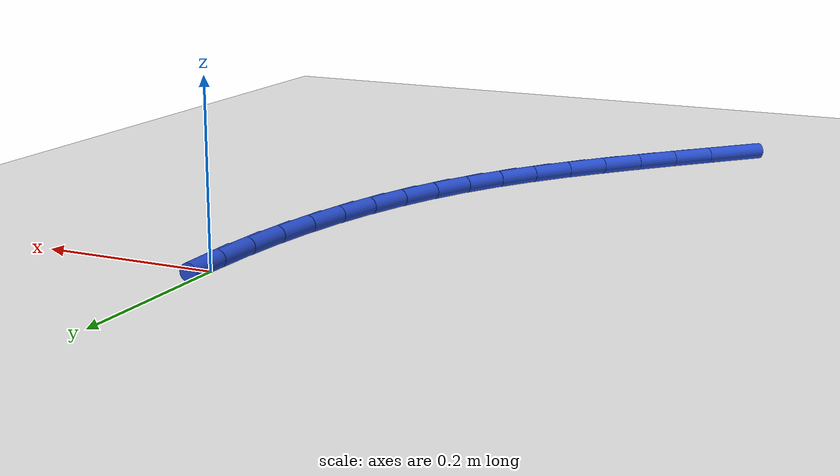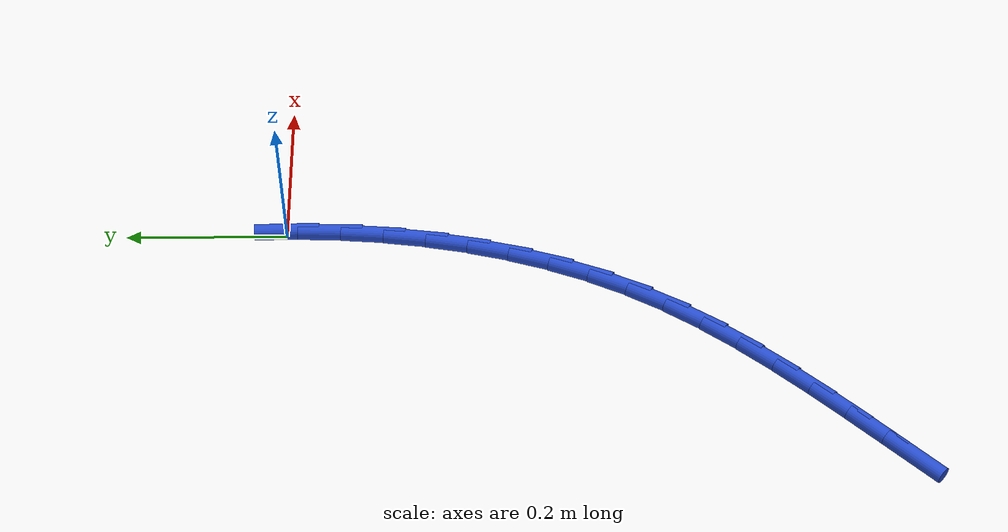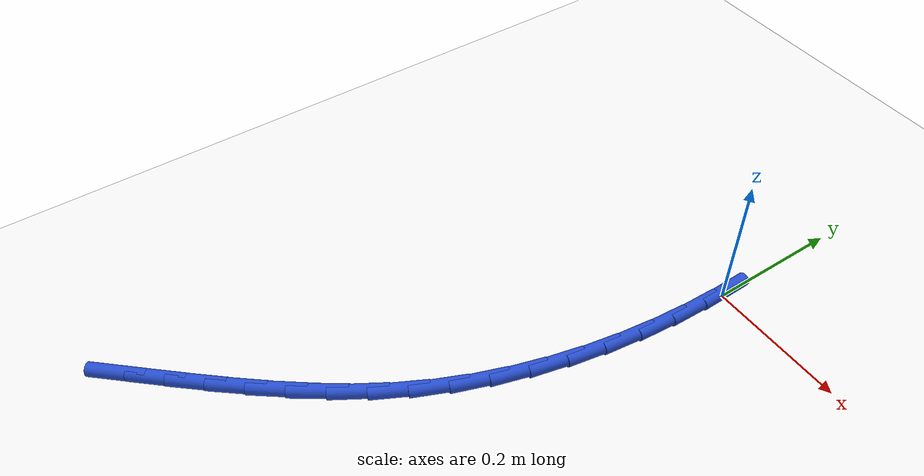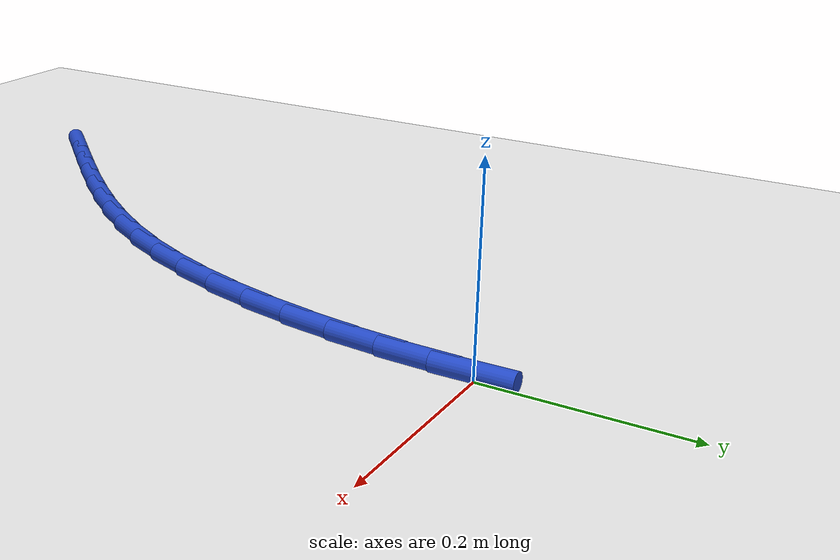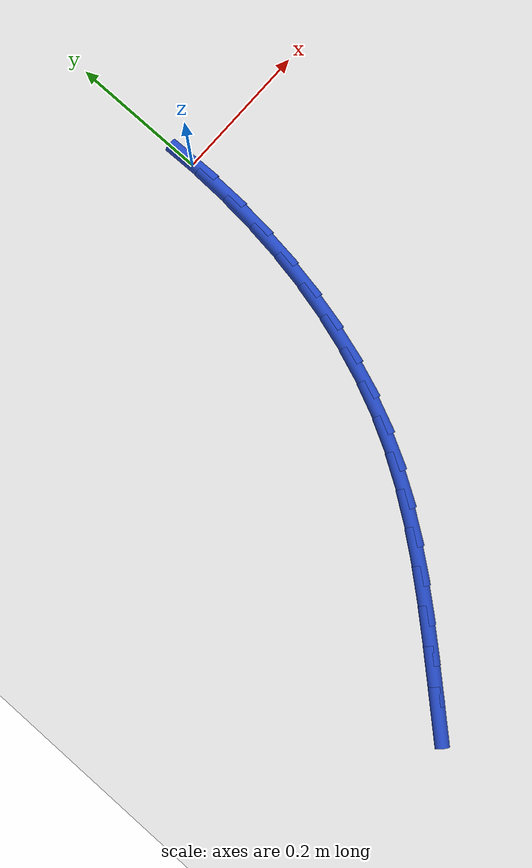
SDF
<sdf version="1.6">
 <world name="default">
  <model name="ground_plane">
   <static>1</static>
   <link name="link">
    <collision name="collision">
     <geometry><plane><normal>0 0 1</normal><size>100 100</size></plane></geometry>
     <surface><friction><ode><mu>100</mu><mu2>50</mu2></ode></friction></surface>
    </collision>
    <visual name="visual">
     <cast_shadows>0</cast_shadows>
     <geometry><plane><normal>0 0 1</normal><size>100 100</size></plane></geometry>
     <material>
      <script><uri>file://media/materials/scripts/gazebo.material</uri><name>Gazebo/WhiteGlow</name></script>
     </material>
    </visual>
   </link>
  </model>
  <model name="line">
   <link name="link_124">
    <pose>-0.3400113496667749 -0.7414110810175384 0.01 0 1.57 0.8307174092500438</pose>
    <collision name="collision">
     <geometry><cylinder><radius>0.01</radius><length>0.08</length></cylinder></geometry>
    </collision>
    <visual name="visual">
     <material>
      <script><name>Gazebo/Blue</name><uri>file://media/materials/scripts/gazebo.material</uri></script>
     </material>
     <geometry><cylinder><radius>0.01</radius><length>0.08</length></cylinder></geometry>
    </visual>
   </link>
   <link name="link_125">
    <pose>-0.3039306709004583 -0.7019024024116403 0.01 0 1.57 0.8351237623532022</pose>
    <collision name="collision">
     <geometry><cylinder><radius>0.01</radius><length>0.08</length></cylinder></geometry>
    </collision>
    <visual name="visual">
     <material>
      <script><name>Gazebo/Blue</name><uri>file://media/materials/scripts/gazebo.material</uri></script>
     </material>
     <geometry><cylinder><radius>0.01</radius><length>0.08</length></cylinder></geometry>
    </visual>
   </link>
   <link name="link_126">
    <pose>-0.26827221856015426 -0.6625088659685424 0.01 0 1.57 0.8497046216174723</pose>
    <collision name="collision">
     <geometry><cylinder><radius>0.01</radius><length>0.08</length></cylinder></geometry>
    </collision>
    <visual name="visual">
     <material>
      <script><name>Gazebo/Blue</name><uri>file://media/materials/scripts/gazebo.material</uri></script>
     </material>
     <geometry><cylinder><radius>0.01</radius><length>0.08</length></cylinder></geometry>
    </visual>
   </link>
   <link name="link_127">
    <pose>-0.23346542407739612 -0.622910748767945 0.01 0 1.57 0.8747304905999064</pose>
    <collision name="collision">
     <geometry><cylinder><radius>0.01</radius><length>0.08</length></cylinder></geometry>
    </collision>
    <visual name="visual">
     <material>
      <script><name>Gazebo/Blue</name><uri>file://media/materials/scripts/gazebo.material</uri></script>
     </material>
     <geometry><cylinder><radius>0.01</radius><length>0.08</length></cylinder></geometry>
    </visual>
   </link>
   <link name="link_128">
    <pose>-0.19993971888371573 -0.582788327889546 0.01 0 1.57 0.9104776572240305</pose>
    <collision name="collision">
     <geometry><cylinder><radius>0.01</radius><length>0.08</length></cylinder></geometry>
    </collision>
    <visual name="visual">
     <material>
      <script><name>Gazebo/Blue</name><uri>file://media/materials/scripts/gazebo.material</uri></script>
     </material>
     <geometry><cylinder><radius>0.01</radius><length>0.08</length></cylinder></geometry>
    </visual>
   </link>
   <link name="link_129">
    <pose>-0.16812453441064526 -0.5418218804130445 0.01 0 1.57 0.9571437244117205</pose>
    <collision name="collision">
     <geometry><cylinder><radius>0.01</radius><length>0.08</length></cylinder></geometry>
    </collision>
    <visual name="visual">
     <material>
      <script><name>Gazebo/Blue</name><uri>file://media/materials/scripts/gazebo.material</uri></script>
     </material>
     <geometry><cylinder><radius>0.01</radius><length>0.08</length></cylinder></geometry>
    </visual>
   </link>
   <link name="link_130">
    <pose>-0.13844930208971692 -0.4996916834181391 0.01 0 1.57 1.0147185997044106</pose>
    <collision name="collision">
     <geometry><cylinder><radius>0.01</radius><length>0.08</length></cylinder></geometry>
    </collision>
    <visual name="visual">
     <material>
      <script><name>Gazebo/Blue</name><uri>file://media/materials/scripts/gazebo.material</uri></script>
     </material>
     <geometry><cylinder><radius>0.01</radius><length>0.08</length></cylinder></geometry>
    </visual>
   </link>
   <link name="link_131">
    <pose>-0.1113434533524627 -0.45607801398452824 0.01 0 1.57 1.082515377827218</pose>
    <collision name="collision">
     <geometry><cylinder><radius>0.01</radius><length>0.08</length></cylinder></geometry>
    </collision>
    <visual name="visual">
     <material>
      <script><name>Gazebo/Blue</name><uri>file://media/materials/scripts/gazebo.material</uri></script>
     </material>
     <geometry><cylinder><radius>0.01</radius><length>0.08</length></cylinder></geometry>
    </visual>
   </link>
   <link name="link_132">
    <pose>-0.087225084570951 -0.41067292324429994 0.01 0 1.57 1.1530958039946302</pose>
    <collision name="collision">
     <geometry><cylinder><radius>0.01</radius><length>0.08</length></cylinder></geometry>
    </collision>
    <visual name="visual">
     <material>
      <script><name>Gazebo/Blue</name><uri>file://media/materials/scripts/gazebo.material</uri></script>
     </material>
     <geometry><cylinder><radius>0.01</radius><length>0.08</length></cylinder></geometry>
    </visual>
   </link>
   <link name="link_133">
    <pose>-0.06625869294279833 -0.36343188308836716 0.01 0 1.57 1.2196489799788213</pose>
    <collision name="collision">
     <geometry><cylinder><radius>0.01</radius><length>0.08</length></cylinder></geometry>
    </collision>
    <visual name="visual">
     <material>
      <script><name>Gazebo/Blue</name><uri>file://media/materials/scripts/gazebo.material</uri></script>
     </material>
     <geometry><cylinder><radius>0.01</radius><length>0.08</length></cylinder></geometry>
    </visual>
   </link>
   <link name="link_134">
    <pose>-0.04835906319588794 -0.31456974893445633 0.01 0 1.57 1.2820540291329727</pose>
    <collision name="collision">
     <geometry><cylinder><radius>0.01</radius><length>0.08</length></cylinder></geometry>
    </collision>
    <visual name="visual">
     <material>
      <script><name>Gazebo/Blue</name><uri>file://media/materials/scripts/gazebo.material</uri></script>
     </material>
     <geometry><cylinder><radius>0.01</radius><length>0.08</length></cylinder></geometry>
    </visual>
   </link>
   <link name="link_135">
    <pose>-0.03343042239771041 -0.26431234274589793 0.01 0 1.57 1.3405720328414106</pose>
    <collision name="collision">
     <geometry><cylinder><radius>0.01</radius><length>0.08</length></cylinder></geometry>
    </collision>
    <visual name="visual">
     <material>
      <script><name>Gazebo/Blue</name><uri>file://media/materials/scripts/gazebo.material</uri></script>
     </material>
     <geometry><cylinder><radius>0.01</radius><length>0.08</length></cylinder></geometry>
    </visual>
   </link>
   <link name="link_136">
    <pose>-0.021376997615757058 -0.21288548648602462 0.01 0 1.57 1.3955291776762904</pose>
    <collision name="collision">
     <geometry><cylinder><radius>0.01</radius><length>0.08</length></cylinder></geometry>
    </collision>
    <visual name="visual">
     <material>
      <script><name>Gazebo/Blue</name><uri>file://media/materials/scripts/gazebo.material</uri></script>
     </material>
     <geometry><cylinder><radius>0.01</radius><length>0.08</length></cylinder></geometry>
    </visual>
   </link>
   <link name="link_137">
    <pose>-0.012103015917518509 -0.16051500211816702 0.01 0 1.57 1.447289467889138</pose>
    <collision name="collision">
     <geometry><cylinder><radius>0.01</radius><length>0.08</length></cylinder></geometry>
    </collision>
    <visual name="visual">
     <material>
      <script><name>Gazebo/Blue</name><uri>file://media/materials/scripts/gazebo.material</uri></script>
     </material>
     <geometry><cylinder><radius>0.01</radius><length>0.08</length></cylinder></geometry>
    </visual>
   </link>
   <link name="link_138">
    <pose>-0.005512704370485581 -0.10742671160565638 0.01 0 1.57 1.496235405160228</pose>
    <collision name="collision">
     <geometry><cylinder><radius>0.01</radius><length>0.08</length></cylinder></geometry>
    </collision>
    <visual name="visual">
     <material>
      <script><name>Gazebo/Blue</name><uri>file://media/materials/scripts/gazebo.material</uri></script>
     </material>
     <geometry><cylinder><radius>0.01</radius><length>0.08</length></cylinder></geometry>
    </visual>
   </link>
   <link name="link_139">
    <pose>-0.0015102900421491367 -0.05384643691182401 0.01 0 1.57 1.5427555822377397</pose>
    <collision name="collision">
     <geometry><cylinder><radius>0.01</radius><length>0.08</length></cylinder></geometry>
    </collision>
    <visual name="visual">
     <material>
      <script><name>Gazebo/Blue</name><uri>file://media/materials/scripts/gazebo.material</uri></script>
     </material>
     <geometry><cylinder><radius>0.01</radius><length>0.08</length></cylinder></geometry>
    </visual>
   </link>
   <link name="link_140">
    <pose>-2.2551405187698492e-17 -2.636779683484747e-16 0.01 0 1.57 -1.554354789270873</pose>
    <collision name="collision">
     <geometry><cylinder><radius>0.01</radius><length>0.08</length></cylinder></geometry>
    </collision>
    <visual name="visual">
     <material>
      <script><name>Gazebo/Blue</name><uri>file://media/materials/scripts/gazebo.material</uri></script>
     </material>
     <geometry><cylinder><radius>0.01</radius><length>0.08</length></cylinder></geometry>
    </visual>
   </link>
  </model>
 </world>
</sdf>
